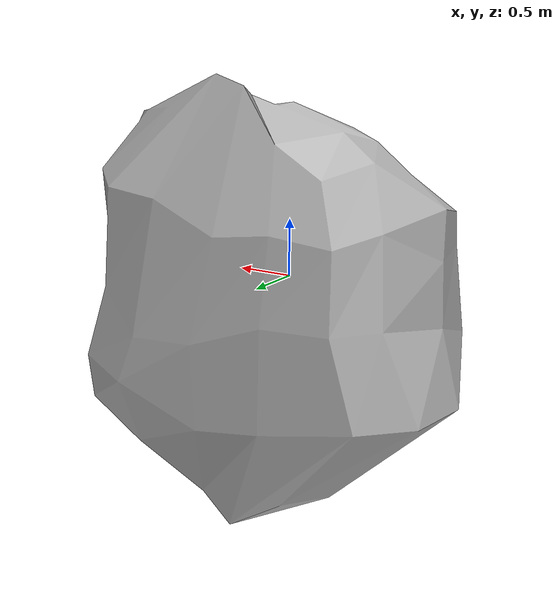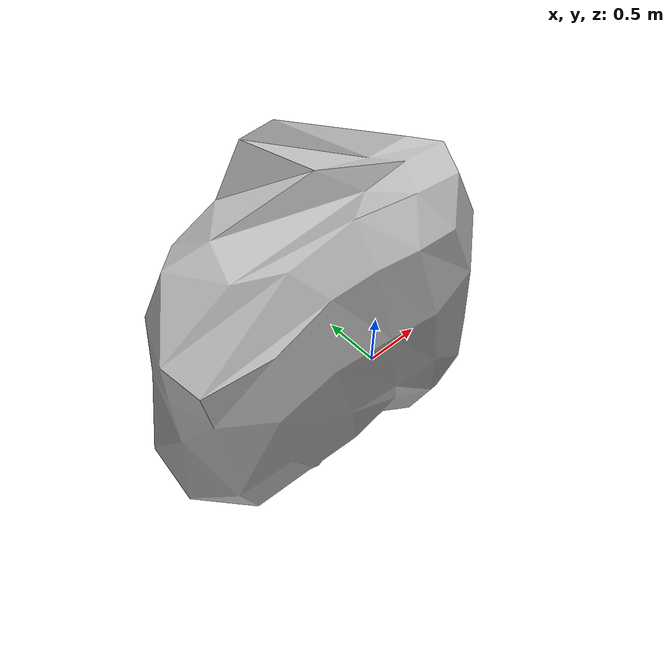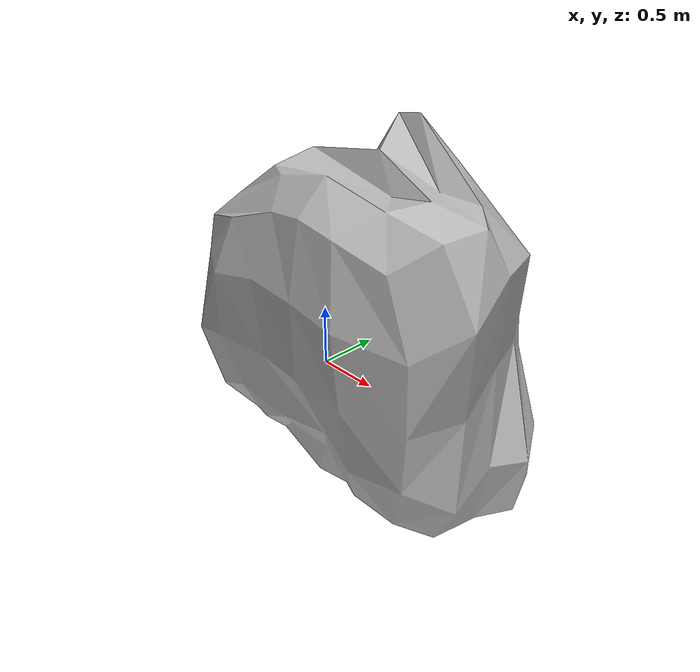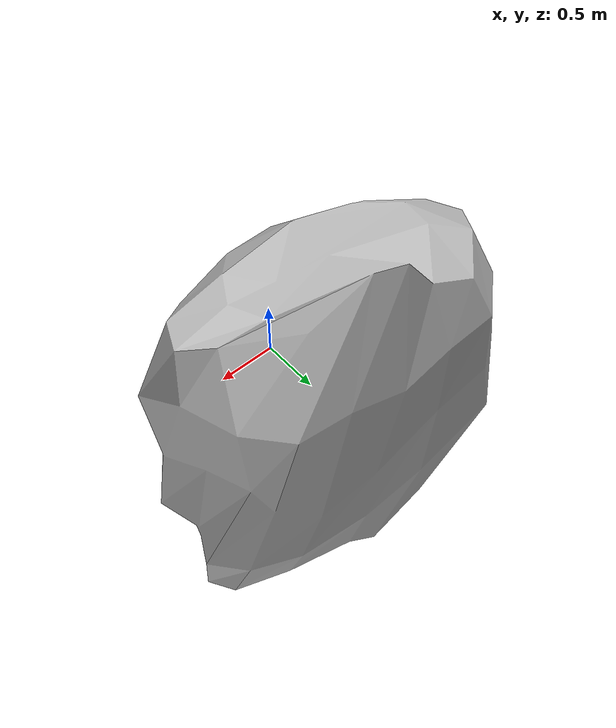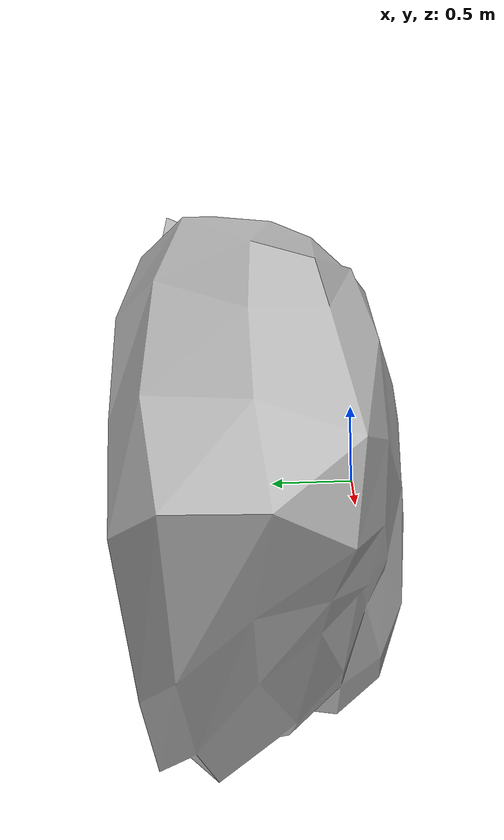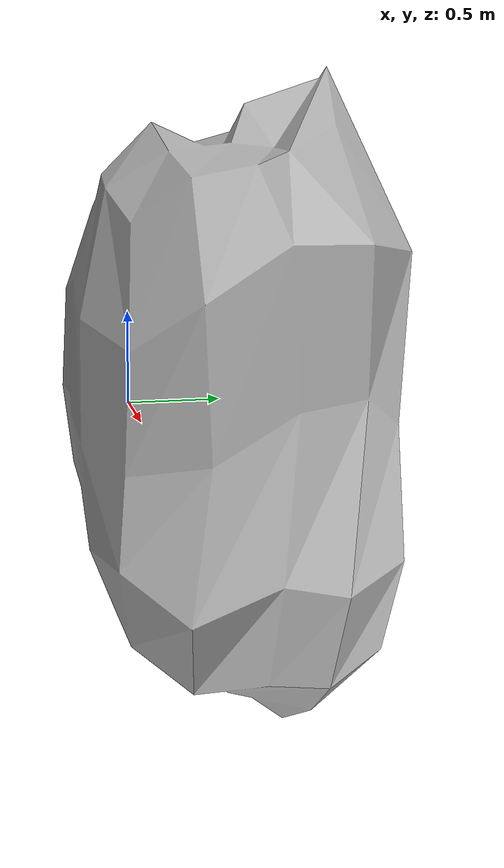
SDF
<?xml version="1.0"?>

<sdf version="1.10">

<model name="rocks">

  <static>true</static>

  <link name="rock">

    <collision name="collision">

      <geometry>

        <box>

          <size>2 2 1</size>

        </box>

      </geometry>

    </collision>

     <visual name="visual">

  <geometry>

    <mesh>

     <uri>model://rocks/meshes/Rock1.obj</uri>
      <scale>1 1 1</scale>

    </mesh>

       </geometry>

    </visual>

  </link>

</model>

</sdf>
